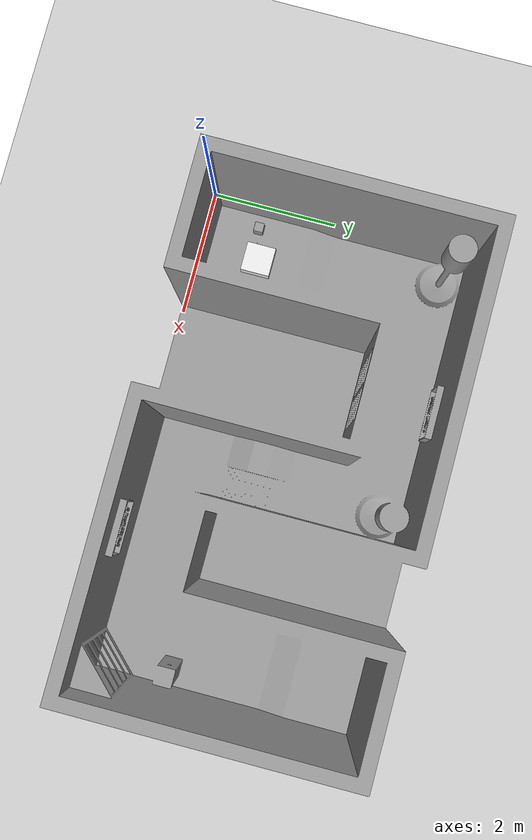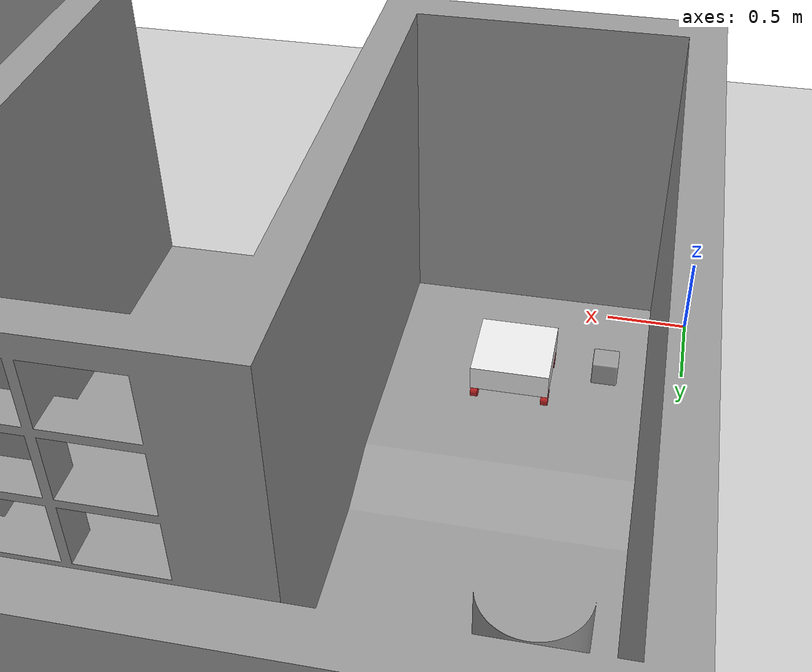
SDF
<sdf version="1.7">
 <world name="default">
  <light name="sun" type="directional">
   <pose>0 0 10 0 -0 0</pose>
   <diffuse>0.8 0.8 0.8 1</diffuse>
   <specular>0.2 0.2 0.2 1</specular>
   <attenuation>
    <range>1000</range>
    <constant>0.9</constant>
    <linear>0.01</linear>
    <quadratic>0.001</quadratic>
   </attenuation>
   <direction>-0.5 0.1 -0.9</direction>
   <spot><inner_angle>0</inner_angle><outer_angle>0</outer_angle><falloff>0</falloff></spot>
  </light>
  <model name="ground_plane">
   <static>1</static>
   <link name="link">
    <collision name="collision">
     <geometry><plane><normal>0 0 1</normal><size>100 100</size></plane></geometry>
     <surface><friction><ode><mu>100</mu><mu2>50</mu2></ode></friction></surface>
    </collision>
    <visual name="visual">
     <cast_shadows>0</cast_shadows>
     <geometry><plane><normal>0 0 1</normal><size>100 100</size></plane></geometry>
     <material>
      <script><uri>file://media/materials/scripts/gazebo.material</uri><name>Gazebo/Grey</name></script>
     </material>
    </visual>
   </link>
  </model>
  <gravity>0 0 -9.8</gravity>
  <magnetic_field>6e-06 2.3e-05 -4.2e-05</magnetic_field>
  <atmosphere type="adiabatic"/>
  <physics type="ode">
   <max_step_size>0.001</max_step_size>
   <real_time_factor>1</real_time_factor>
   <real_time_update_rate>1000</real_time_update_rate>
  </physics>
  <scene><ambient>0.4 0.4 0.4 1</ambient><background>0.7 0.7 0.7 1</background><shadows>1</shadows></scene>
  <audio><device>default</device></audio>
  <spherical_coordinates>
   <surface_model>EARTH_WGS84</surface_model>
   <latitude_deg>0</latitude_deg>
   <longitude_deg>0</longitude_deg>
   <elevation>0</elevation>
   <heading_deg>0</heading_deg>
  </spherical_coordinates>
  <model name="projhome">
   <link name="link_0">
    <inertial>
     <mass>1</mass>
     <inertia>
      <ixx>0.166667</ixx>
      <ixy>0</ixy>
      <ixz>0</ixz>
      <iyy>0.166667</iyy>
      <iyz>0</iyz>
      <izz>0.166667</izz>
     </inertia>
    </inertial>
    <visual name="visual">
     <geometry>
      <mesh>
       <uri>/home/kunphakkapohn/projectrobotic2/src/articubot_one/model/house.dae</uri>
       <scale>1 1 1</scale>
      </mesh>
     </geometry>
     <material>
      <lighting>1</lighting>
      <script><uri>file://media/materials/scripts/gazebo.material</uri><name>Gazebo/Grey</name></script>
      <shader type="pixel"/>
     </material>
    </visual>
    <collision name="collision">
     <geometry>
      <mesh>
       <uri>/home/kunphakkapohn/projectrobotic2/src/articubot_one/model/house.dae</uri>
       <scale>1 1 1</scale>
      </mesh>
     </geometry>
     <surface>
      <friction>
       <ode><mu>1</mu><mu2>1</mu2><fdir1>0 0 0</fdir1><slip1>0</slip1><slip2>0</slip2></ode>
       <torsional>
        <coefficient>1</coefficient>
        <patch_radius>0</patch_radius>
        <surface_radius>0</surface_radius>
        <use_patch_radius>1</use_patch_radius>
        <ode><slip>0</slip></ode>
       </torsional>
      </friction>
      <bounce><restitution_coefficient>0</restitution_coefficient><threshold>1e+06</threshold></bounce>
      <contact>
       <collide_without_contact>0</collide_without_contact>
       <collide_without_contact_bitmask>1</collide_without_contact_bitmask>
       <collide_bitmask>1</collide_bitmask>
       <ode>
        <soft_cfm>0</soft_cfm>
        <soft_erp>0.2</soft_erp>
        <kp>1e+13</kp>
        <kd>1</kd>
        <max_vel>0.01</max_vel>
        <min_depth>0</min_depth>
       </ode>
       <bullet>
        <split_impulse>1</split_impulse>
        <split_impulse_penetration_threshold>-0.01</split_impulse_penetration_threshold>
        <soft_cfm>0</soft_cfm>
        <soft_erp>0.2</soft_erp>
        <kp>1e+13</kp>
        <kd>1</kd>
       </bullet>
      </contact>
     </surface>
    </collision>
   </link>
   <static>1</static>
   <allow_auto_disable>0</allow_auto_disable>
   <pose>0.774151 0.662117 0 0 -0 0</pose>
  </model>
  <model name="my_bot">
   <link name="base_link">
    <inertial>
     <pose>0 0 0.14 0 -0 0</pose>
     <mass>0.5</mass>
     <inertia>
      <ixx>0.00945017</ixx>
      <ixy>0</ixy>
      <ixz>0</ixz>
      <iyy>0.00945017</iyy>
      <iyz>0</iyz>
      <izz>0.0170253</izz>
     </inertia>
    </inertial>
    <collision name="base_link_fixed_joint_lump__chassis_collision">
     <pose>0 0 0.14 0 -0 0</pose>
     <geometry><box><size>0.452 0.452 0.15</size></box></geometry>
    </collision>
    <visual name="base_link_fixed_joint_lump__chassis_visual">
     <pose>0 0 0.14 0 -0 0</pose>
     <geometry><box><size>0.452 0.452 0.15</size></box></geometry>
     <material>
      <script><name>Gazebo/White</name><uri>file://media/materials/scripts/gazebo.material</uri></script>
     </material>
    </visual>
   </link>
   <joint name="back_left_wheel_joint" type="revolute">
    <pose relative_to="base_link">-0.165 0.205 0.015 -1.5708 0 0</pose>
    <parent>base_link</parent>
    <child>back_left_wheel</child>
    <axis>
     <xyz>0 0 1</xyz>
     <limit><lower>-1e+16</lower><upper>1e+16</upper></limit>
     <dynamics><spring_reference>0</spring_reference><spring_stiffness>0</spring_stiffness></dynamics>
    </axis>
   </joint>
   <link name="back_left_wheel">
    <pose relative_to="back_left_wheel_joint">0 0 0 0 -0 0</pose>
    <inertial>
     <mass>0.1</mass>
     <inertia>
      <ixx>7.58333e-05</ixx>
      <ixy>0</ixy>
      <ixz>0</ixz>
      <iyy>7.58333e-05</iyy>
      <iyz>0</iyz>
      <izz>0.000125</izz>
     </inertia>
    </inertial>
    <collision name="back_left_wheel_collision">
     <geometry><cylinder><length>0.04</length><radius>0.05</radius></cylinder></geometry>
    </collision>
    <visual name="back_left_wheel_visual">
     <geometry><cylinder><length>0.04</length><radius>0.05</radius></cylinder></geometry>
     <material>
      <script><name>Gazebo/Red</name><uri>file://media/materials/scripts/gazebo.material</uri></script>
     </material>
    </visual>
   </link>
   <joint name="back_right_wheel_joint" type="revolute">
    <pose relative_to="base_link">-0.165 -0.205 0.015 1.5708 -0 0</pose>
    <parent>base_link</parent>
    <child>back_right_wheel</child>
    <axis>
     <xyz>0 0 -1</xyz>
     <limit><lower>-1e+16</lower><upper>1e+16</upper></limit>
     <dynamics><spring_reference>0</spring_reference><spring_stiffness>0</spring_stiffness></dynamics>
    </axis>
   </joint>
   <link name="back_right_wheel">
    <pose relative_to="back_right_wheel_joint">0 0 0 0 -0 0</pose>
    <inertial>
     <mass>0.1</mass>
     <inertia>
      <ixx>7.58333e-05</ixx>
      <ixy>0</ixy>
      <ixz>0</ixz>
      <iyy>7.58333e-05</iyy>
      <iyz>0</iyz>
      <izz>0.000125</izz>
     </inertia>
    </inertial>
    <collision name="back_right_wheel_collision">
     <geometry><cylinder><length>0.04</length><radius>0.05</radius></cylinder></geometry>
    </collision>
    <visual name="back_right_wheel_visual">
     <geometry><cylinder><length>0.04</length><radius>0.05</radius></cylinder></geometry>
     <material>
      <script><name>Gazebo/Red</name><uri>file://media/materials/scripts/gazebo.material</uri></script>
     </material>
    </visual>
   </link>
   <joint name="front_left_wheel_joint" type="revolute">
    <pose relative_to="base_link">0.165 0.205 0.015 -1.5708 0 0</pose>
    <parent>base_link</parent>
    <child>front_left_wheel</child>
    <axis>
     <xyz>0 0 1</xyz>
     <limit><lower>-1e+16</lower><upper>1e+16</upper></limit>
     <dynamics><spring_reference>0</spring_reference><spring_stiffness>0</spring_stiffness></dynamics>
    </axis>
   </joint>
   <link name="front_left_wheel">
    <pose relative_to="front_left_wheel_joint">0 0 0 0 -0 0</pose>
    <inertial>
     <mass>0.1</mass>
     <inertia>
      <ixx>7.58333e-05</ixx>
      <ixy>0</ixy>
      <ixz>0</ixz>
      <iyy>7.58333e-05</iyy>
      <iyz>0</iyz>
      <izz>0.000125</izz>
     </inertia>
    </inertial>
    <collision name="front_left_wheel_collision">
     <geometry><cylinder><length>0.04</length><radius>0.05</radius></cylinder></geometry>
    </collision>
    <visual name="front_left_wheel_visual">
     <geometry><cylinder><length>0.04</length><radius>0.05</radius></cylinder></geometry>
     <material>
      <script><name>Gazebo/Red</name><uri>file://media/materials/scripts/gazebo.material</uri></script>
     </material>
    </visual>
   </link>
   <joint name="front_right_wheel_joint" type="revolute">
    <pose relative_to="base_link">0.165 -0.205 0.015 1.5708 -0 0</pose>
    <parent>base_link</parent>
    <child>front_right_wheel</child>
    <axis>
     <xyz>0 0 -1</xyz>
     <limit><lower>-1e+16</lower><upper>1e+16</upper></limit>
     <dynamics><spring_reference>0</spring_reference><spring_stiffness>0</spring_stiffness></dynamics>
    </axis>
   </joint>
   <link name="front_right_wheel">
    <pose relative_to="front_right_wheel_joint">0 0 0 0 -0 0</pose>
    <inertial>
     <mass>0.1</mass>
     <inertia>
      <ixx>7.58333e-05</ixx>
      <ixy>0</ixy>
      <ixz>0</ixz>
      <iyy>7.58333e-05</iyy>
      <iyz>0</iyz>
      <izz>0.000125</izz>
     </inertia>
    </inertial>
    <collision name="front_right_wheel_collision">
     <geometry><cylinder><length>0.04</length><radius>0.05</radius></cylinder></geometry>
    </collision>
    <visual name="front_right_wheel_visual">
     <geometry><cylinder><length>0.04</length><radius>0.05</radius></cylinder></geometry>
     <material>
      <script><name>Gazebo/Red</name><uri>file://media/materials/scripts/gazebo.material</uri></script>
     </material>
    </visual>
   </link>
   <static>0</static>
   <plugin name="back_wheel" filename="libgazebo_ros_diff_drive.so">
    <left_joint>back_left_wheel_joint</left_joint>
    <right_joint>back_right_wheel_joint</right_joint>
    <wheel_separation>0.35</wheel_separation>
    <wheel_diameter>0.1</wheel_diameter>
    <max_wheel_torque>200</max_wheel_torque>
    <max_wheel_acceleration>10.0</max_wheel_acceleration>
    <odometry_frame>odom</odometry_frame>
    <robot_base_frame>base_link</robot_base_frame>
    <publish_odom>1</publish_odom>
    <publish_odom_tf>1</publish_odom_tf>
    <publish_wheel_tf>1</publish_wheel_tf>
   </plugin>
   <plugin name="front_wheel" filename="libgazebo_ros_diff_drive.so">
    <left_joint>front_left_wheel_joint</left_joint>
    <right_joint>front_right_wheel_joint</right_joint>
    <wheel_separation>0.35</wheel_separation>
    <wheel_diameter>0.1</wheel_diameter>
    <max_wheel_torque>200</max_wheel_torque>
    <max_wheel_acceleration>10.0</max_wheel_acceleration>
    <odometry_frame>odom</odometry_frame>
    <robot_base_frame>base_link</robot_base_frame>
    <publish_odom>1</publish_odom>
    <publish_odom_tf>1</publish_odom_tf>
    <publish_wheel_tf>1</publish_wheel_tf>
   </plugin>
   <pose>0.999859 0.999178 0.285101 0 -0 1.56978</pose>
  </model>
  <model name="Untitled">
   <link name="link_0">
    <inertial>
     <mass>1</mass>
     <inertia>
      <ixx>0.166667</ixx>
      <ixy>0</ixy>
      <ixz>0</ixz>
      <iyy>0.166667</iyy>
      <iyz>0</iyz>
      <izz>0.166667</izz>
     </inertia>
    </inertial>
    <pose>-0 3e-06 0 0 -0 0</pose>
    <visual name="visual">
     <geometry>
      <mesh>
       <uri>/home/kunphakkapohn/projectrobotic2/src/articubot_one/model/rebox150mm.dae</uri>
       <scale>1 1 1</scale>
      </mesh>
     </geometry>
     <material>
      <lighting>1</lighting>
      <script><uri>file://media/materials/scripts/gazebo.material</uri><name>Gazebo/Grey</name></script>
      <shader type="pixel"/>
     </material>
    </visual>
    <collision name="collision">
     <geometry>
      <mesh>
       <uri>/home/kunphakkapohn/projectrobotic2/src/articubot_one/model/rebox150mm.dae</uri>
       <scale>1 1 1</scale>
      </mesh>
     </geometry>
     <surface>
      <friction>
       <ode><mu>1</mu><mu2>1</mu2><fdir1>0 0 0</fdir1><slip1>0</slip1><slip2>0</slip2></ode>
       <torsional>
        <coefficient>1</coefficient>
        <patch_radius>0</patch_radius>
        <surface_radius>0</surface_radius>
        <use_patch_radius>1</use_patch_radius>
        <ode><slip>0</slip></ode>
       </torsional>
      </friction>
      <bounce><restitution_coefficient>0</restitution_coefficient><threshold>1e+06</threshold></bounce>
      <contact>
       <collide_without_contact>0</collide_without_contact>
       <collide_without_contact_bitmask>1</collide_without_contact_bitmask>
       <collide_bitmask>1</collide_bitmask>
       <ode>
        <soft_cfm>0</soft_cfm>
        <soft_erp>0.2</soft_erp>
        <kp>1e+13</kp>
        <kd>1</kd>
        <max_vel>0.01</max_vel>
        <min_depth>0</min_depth>
       </ode>
       <bullet>
        <split_impulse>1</split_impulse>
        <split_impulse_penetration_threshold>-0.01</split_impulse_penetration_threshold>
        <soft_cfm>0</soft_cfm>
        <soft_erp>0.2</soft_erp>
        <kp>1e+13</kp>
        <kd>1</kd>
       </bullet>
      </contact>
     </surface>
    </collision>
   </link>
   <static>0</static>
   <pose>0.4725 0.868263 0.203924 -2e-06 4e-06 0.003421</pose>
  </model>
 </world>
</sdf>
